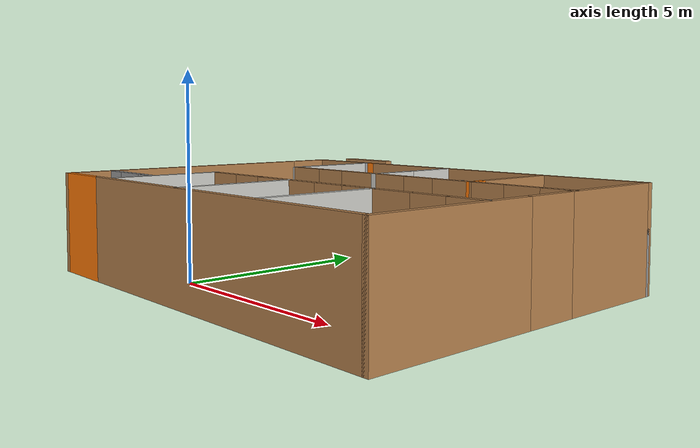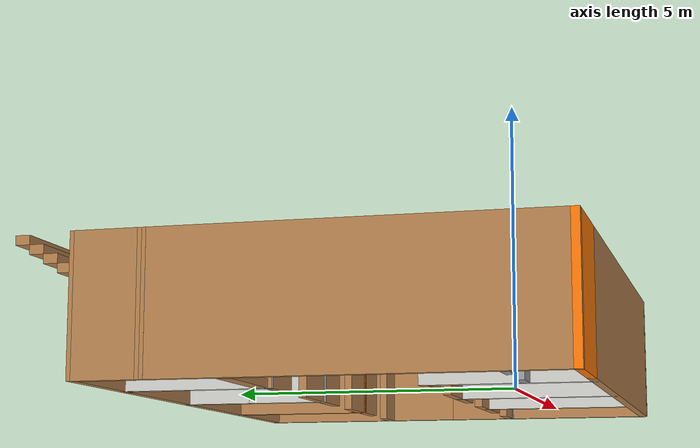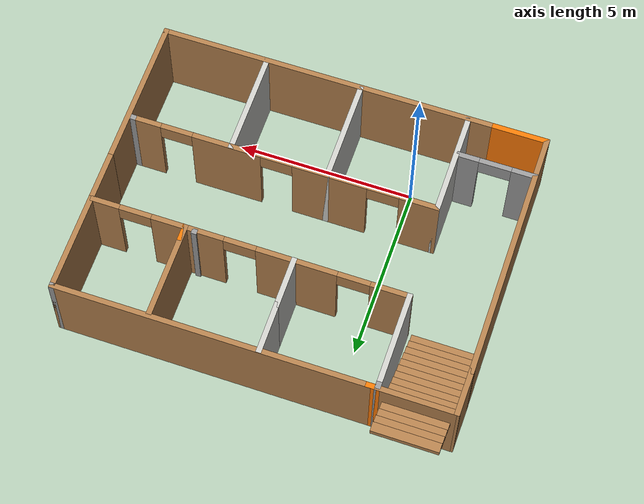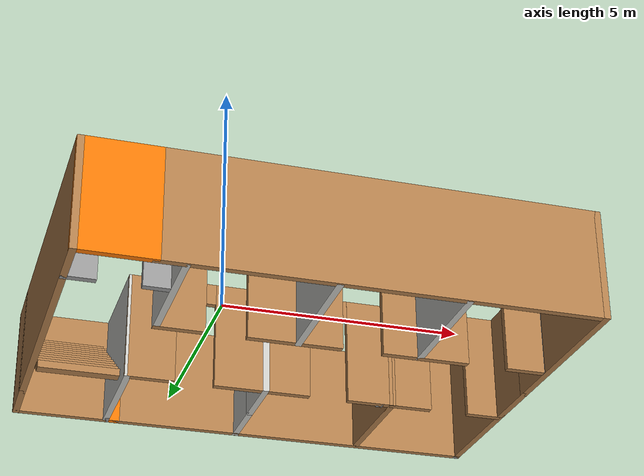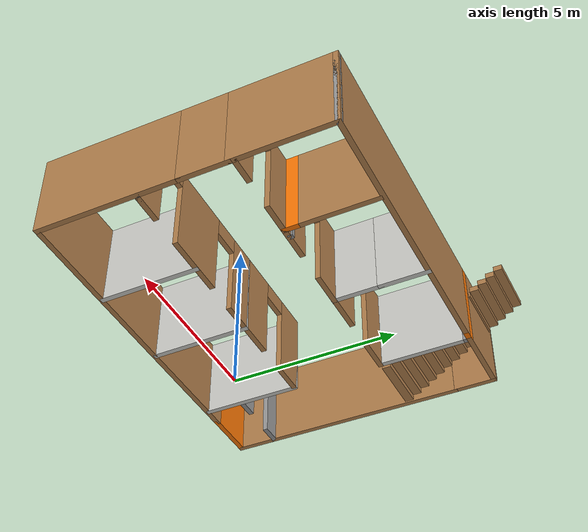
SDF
<?xml version='1.0'?>
<sdf version='1.7'>
  <model name='default'>
    <pose>2.22469 3.1925 0 0 -0 0</pose>
    <link name='Stairs_0'>
      <visual name='Stairs_0_Visual_0'>
        <pose>-4.43969 1.01683 0.083333 0 -0 -3.14159</pose>
        <geometry>
          <box>
            <size>1.81 0.258667 0.166667</size>
          </box>
        </geometry>
        <material>
          <script>
            <uri>file://media/materials/scripts/gazebo.material</uri>
            <name>Gazebo/Wood</name>
          </script>
          <ambient>1 1 1 1</ambient>
        </material>
        <meta>
          <layer>0</layer>
        </meta>
      </visual>
      <collision name='Stairs_0_Collision_0'>
        <geometry>
          <box>
            <size>1.81 0.258667 0.166667</size>
          </box>
        </geometry>
        <pose>-4.43969 1.01683 0.083333 0 -0 -3.14159</pose>
      </collision>
      <visual name='Stairs_0_Visual_1'>
        <pose>-4.43969 1.2755 0.25 0 -0 -3.14159</pose>
        <geometry>
          <box>
            <size>1.81 0.258667 0.166667</size>
          </box>
        </geometry>
        <material>
          <script>
            <uri>file://media/materials/scripts/gazebo.material</uri>
            <name>Gazebo/Wood</name>
          </script>
          <ambient>1 1 1 1</ambient>
        </material>
        <meta>
          <layer>0</layer>
        </meta>
      </visual>
      <collision name='Stairs_0_Collision_1'>
        <geometry>
          <box>
            <size>1.81 0.258667 0.166667</size>
          </box>
        </geometry>
        <pose>-4.43969 1.2755 0.25 0 -0 -3.14159</pose>
      </collision>
      <visual name='Stairs_0_Visual_2'>
        <pose>-4.43969 1.53417 0.416667 0 -0 -3.14159</pose>
        <geometry>
          <box>
            <size>1.81 0.258667 0.166667</size>
          </box>
        </geometry>
        <material>
          <script>
            <uri>file://media/materials/scripts/gazebo.material</uri>
            <name>Gazebo/Wood</name>
          </script>
          <ambient>1 1 1 1</ambient>
        </material>
        <meta>
          <layer>0</layer>
        </meta>
      </visual>
      <collision name='Stairs_0_Collision_2'>
        <geometry>
          <box>
            <size>1.81 0.258667 0.166667</size>
          </box>
        </geometry>
        <pose>-4.43969 1.53417 0.416667 0 -0 -3.14159</pose>
      </collision>
      <visual name='Stairs_0_Visual_3'>
        <pose>-4.43969 1.79283 0.583333 0 -0 -3.14159</pose>
        <geometry>
          <box>
            <size>1.81 0.258667 0.166667</size>
          </box>
        </geometry>
        <material>
          <script>
            <uri>file://media/materials/scripts/gazebo.material</uri>
            <name>Gazebo/Wood</name>
          </script>
          <ambient>1 1 1 1</ambient>
        </material>
        <meta>
          <layer>0</layer>
        </meta>
      </visual>
      <collision name='Stairs_0_Collision_3'>
        <geometry>
          <box>
            <size>1.81 0.258667 0.166667</size>
          </box>
        </geometry>
        <pose>-4.43969 1.79283 0.583333 0 -0 -3.14159</pose>
      </collision>
      <visual name='Stairs_0_Visual_4'>
        <pose>-4.43969 2.0515 0.75 0 -0 -3.14159</pose>
        <geometry>
          <box>
            <size>1.81 0.258667 0.166667</size>
          </box>
        </geometry>
        <material>
          <script>
            <uri>file://media/materials/scripts/gazebo.material</uri>
            <name>Gazebo/Wood</name>
          </script>
          <ambient>1 1 1 1</ambient>
        </material>
        <meta>
          <layer>0</layer>
        </meta>
      </visual>
      <collision name='Stairs_0_Collision_4'>
        <geometry>
          <box>
            <size>1.81 0.258667 0.166667</size>
          </box>
        </geometry>
        <pose>-4.43969 2.0515 0.75 0 -0 -3.14159</pose>
      </collision>
      <visual name='Stairs_0_Visual_5'>
        <pose>-4.43969 2.31017 0.916667 0 -0 -3.14159</pose>
        <geometry>
          <box>
            <size>1.81 0.258667 0.166667</size>
          </box>
        </geometry>
        <material>
          <script>
            <uri>file://media/materials/scripts/gazebo.material</uri>
            <name>Gazebo/Wood</name>
          </script>
          <ambient>1 1 1 1</ambient>
        </material>
        <meta>
          <layer>0</layer>
        </meta>
      </visual>
      <collision name='Stairs_0_Collision_5'>
        <geometry>
          <box>
            <size>1.81 0.258667 0.166667</size>
          </box>
        </geometry>
        <pose>-4.43969 2.31017 0.916667 0 -0 -3.14159</pose>
      </collision>
      <visual name='Stairs_0_Visual_6'>
        <pose>-4.43969 2.56883 1.08333 0 -0 -3.14159</pose>
        <geometry>
          <box>
            <size>1.81 0.258667 0.166667</size>
          </box>
        </geometry>
        <material>
          <script>
            <uri>file://media/materials/scripts/gazebo.material</uri>
            <name>Gazebo/Wood</name>
          </script>
          <ambient>1 1 1 1</ambient>
        </material>
        <meta>
          <layer>0</layer>
        </meta>
      </visual>
      <collision name='Stairs_0_Collision_6'>
        <geometry>
          <box>
            <size>1.81 0.258667 0.166667</size>
          </box>
        </geometry>
        <pose>-4.43969 2.56883 1.08333 0 -0 -3.14159</pose>
      </collision>
      <visual name='Stairs_0_Visual_7'>
        <pose>-4.43969 2.8275 1.25 0 -0 -3.14159</pose>
        <geometry>
          <box>
            <size>1.81 0.258667 0.166667</size>
          </box>
        </geometry>
        <material>
          <script>
            <uri>file://media/materials/scripts/gazebo.material</uri>
            <name>Gazebo/Wood</name>
          </script>
          <ambient>1 1 1 1</ambient>
        </material>
        <meta>
          <layer>0</layer>
        </meta>
      </visual>
      <collision name='Stairs_0_Collision_7'>
        <geometry>
          <box>
            <size>1.81 0.258667 0.166667</size>
          </box>
        </geometry>
        <pose>-4.43969 2.8275 1.25 0 -0 -3.14159</pose>
      </collision>
      <visual name='Stairs_0_Visual_8'>
        <pose>-4.43969 3.08617 1.41667 0 -0 -3.14159</pose>
        <geometry>
          <box>
            <size>1.81 0.258667 0.166667</size>
          </box>
        </geometry>
        <material>
          <script>
            <uri>file://media/materials/scripts/gazebo.material</uri>
            <name>Gazebo/Wood</name>
          </script>
          <ambient>1 1 1 1</ambient>
        </material>
        <meta>
          <layer>0</layer>
        </meta>
      </visual>
      <collision name='Stairs_0_Collision_8'>
        <geometry>
          <box>
            <size>1.81 0.258667 0.166667</size>
          </box>
        </geometry>
        <pose>-4.43969 3.08617 1.41667 0 -0 -3.14159</pose>
      </collision>
      <visual name='Stairs_0_Visual_9'>
        <pose>-4.43969 3.34483 1.58333 0 -0 -3.14159</pose>
        <geometry>
          <box>
            <size>1.81 0.258667 0.166667</size>
          </box>
        </geometry>
        <material>
          <script>
            <uri>file://media/materials/scripts/gazebo.material</uri>
            <name>Gazebo/Wood</name>
          </script>
          <ambient>1 1 1 1</ambient>
        </material>
        <meta>
          <layer>0</layer>
        </meta>
      </visual>
      <collision name='Stairs_0_Collision_9'>
        <geometry>
          <box>
            <size>1.81 0.258667 0.166667</size>
          </box>
        </geometry>
        <pose>-4.43969 3.34483 1.58333 0 -0 -3.14159</pose>
      </collision>
      <visual name='Stairs_0_Visual_10'>
        <pose>-4.43969 3.6035 1.75 0 -0 -3.14159</pose>
        <geometry>
          <box>
            <size>1.81 0.258667 0.166667</size>
          </box>
        </geometry>
        <material>
          <script>
            <uri>file://media/materials/scripts/gazebo.material</uri>
            <name>Gazebo/Wood</name>
          </script>
          <ambient>1 1 1 1</ambient>
        </material>
        <meta>
          <layer>0</layer>
        </meta>
      </visual>
      <collision name='Stairs_0_Collision_10'>
        <geometry>
          <box>
            <size>1.81 0.258667 0.166667</size>
          </box>
        </geometry>
        <pose>-4.43969 3.6035 1.75 0 -0 -3.14159</pose>
      </collision>
      <visual name='Stairs_0_Visual_11'>
        <pose>-4.43969 3.86217 1.91667 0 -0 -3.14159</pose>
        <geometry>
          <box>
            <size>1.81 0.258667 0.166667</size>
          </box>
        </geometry>
        <material>
          <script>
            <uri>file://media/materials/scripts/gazebo.material</uri>
            <name>Gazebo/Wood</name>
          </script>
          <ambient>1 1 1 1</ambient>
        </material>
        <meta>
          <layer>0</layer>
        </meta>
      </visual>
      <collision name='Stairs_0_Collision_11'>
        <geometry>
          <box>
            <size>1.81 0.258667 0.166667</size>
          </box>
        </geometry>
        <pose>-4.43969 3.86217 1.91667 0 -0 -3.14159</pose>
      </collision>
      <visual name='Stairs_0_Visual_12'>
        <pose>-4.43969 4.12083 2.08333 0 -0 -3.14159</pose>
        <geometry>
          <box>
            <size>1.81 0.258667 0.166667</size>
          </box>
        </geometry>
        <material>
          <script>
            <uri>file://media/materials/scripts/gazebo.material</uri>
            <name>Gazebo/Wood</name>
          </script>
          <ambient>1 1 1 1</ambient>
        </material>
        <meta>
          <layer>0</layer>
        </meta>
      </visual>
      <collision name='Stairs_0_Collision_12'>
        <geometry>
          <box>
            <size>1.81 0.258667 0.166667</size>
          </box>
        </geometry>
        <pose>-4.43969 4.12083 2.08333 0 -0 -3.14159</pose>
      </collision>
      <visual name='Stairs_0_Visual_13'>
        <pose>-4.43969 4.3795 2.25 0 -0 -3.14159</pose>
        <geometry>
          <box>
            <size>1.81 0.258667 0.166667</size>
          </box>
        </geometry>
        <material>
          <script>
            <uri>file://media/materials/scripts/gazebo.material</uri>
            <name>Gazebo/Wood</name>
          </script>
          <ambient>1 1 1 1</ambient>
        </material>
        <meta>
          <layer>0</layer>
        </meta>
      </visual>
      <collision name='Stairs_0_Collision_13'>
        <geometry>
          <box>
            <size>1.81 0.258667 0.166667</size>
          </box>
        </geometry>
        <pose>-4.43969 4.3795 2.25 0 -0 -3.14159</pose>
      </collision>
      <visual name='Stairs_0_Visual_14'>
        <pose>-4.43969 4.63817 2.41667 0 -0 -3.14159</pose>
        <geometry>
          <box>
            <size>1.81 0.258667 0.166667</size>
          </box>
        </geometry>
        <material>
          <script>
            <uri>file://media/materials/scripts/gazebo.material</uri>
            <name>Gazebo/Wood</name>
          </script>
          <ambient>1 1 1 1</ambient>
        </material>
        <meta>
          <layer>0</layer>
        </meta>
      </visual>
      <collision name='Stairs_0_Collision_14'>
        <geometry>
          <box>
            <size>1.81 0.258667 0.166667</size>
          </box>
        </geometry>
        <pose>-4.43969 4.63817 2.41667 0 -0 -3.14159</pose>
      </collision>
    </link>
    <link name='Wall_110'>
      <collision name='Wall_110_Collision'>
        <geometry>
          <box>
            <size>8.75 0.15 2.5</size>
          </box>
        </geometry>
        <pose>0 0 1.25 0 -0 0</pose>
      </collision>
      <visual name='Wall_110_Visual'>
        <pose>0 0 1.25 0 -0 0</pose>
        <geometry>
          <box>
            <size>8.75 0.15 2.5</size>
          </box>
        </geometry>
        <material>
          <script>
            <uri>file://media/materials/scripts/gazebo.material</uri>
            <name>Gazebo/Wood</name>
          </script>
          <ambient>0.996078 0.47451 0.0196078 1</ambient>
        </material>
        <meta>
          <layer>0</layer>
        </meta>
      </visual>
      <pose>1.17531 3.6075 0 0 -0 3.14159</pose>
    </link>
    <link name='Wall_120'>
      <collision name='Wall_120_Collision'>
        <geometry>
          <box>
            <size>0.15 0.15 2.5</size>
          </box>
        </geometry>
        <pose>0 0 1.25 0 -0 0</pose>
      </collision>
      <visual name='Wall_120_Visual'>
        <pose>0 0 1.25 0 -0 0</pose>
        <geometry>
          <box>
            <size>0.15 0.15 2.5</size>
          </box>
        </geometry>
        <material>
          <script>
            <uri>file://media/materials/scripts/gazebo.material</uri>
            <name>Gazebo/Grey</name>
          </script>
          <ambient>1 1 1 1</ambient>
        </material>
        <meta>
          <layer>0</layer>
        </meta>
      </visual>
      <pose>2.53531 0.9475 0 0 -0 0</pose>
    </link>
    <link name='Wall_124'>
      <collision name='Wall_124_Collision'>
        <geometry>
          <box>
            <size>2.75 0.15 2.5</size>
          </box>
        </geometry>
        <pose>0 0 1.25 0 -0 0</pose>
      </collision>
      <visual name='Wall_124_Visual'>
        <pose>0 0 1.25 0 -0 0</pose>
        <geometry>
          <box>
            <size>2.75 0.15 2.5</size>
          </box>
        </geometry>
        <material>
          <script>
            <uri>file://media/materials/scripts/gazebo.material</uri>
            <name>Gazebo/Wood</name>
          </script>
          <ambient>0.996078 0.47451 0.0196078 1</ambient>
        </material>
        <meta>
          <layer>0</layer>
        </meta>
      </visual>
      <pose>2.81531 2.1975 0 0 -0 -1.5708</pose>
    </link>
    <link name='Wall_125'>
      <pose>-0.274689 0.9025 0 0 -0 3.13998</pose>
      <visual name='Wall_125_Visual_0'>
        <pose>-2.58749 0 1.25 0 -0 0</pose>
        <geometry>
          <box>
            <size>1.15503 0.15 2.5</size>
          </box>
        </geometry>
        <material>
          <script>
            <uri>file://media/materials/scripts/gazebo.material</uri>
            <name>Gazebo/Wood</name>
          </script>
          <ambient>0.921569 0.807843 0.615686 1</ambient>
        </material>
        <meta>
          <layer>0</layer>
        </meta>
      </visual>
      <collision name='Wall_125_Collision_0'>
        <geometry>
          <box>
            <size>1.15503 0.15 2.5</size>
          </box>
        </geometry>
        <pose>-2.58749 0 1.25 0 -0 0</pose>
      </collision>
      <visual name='Wall_125_Visual_1'>
        <pose>0.010089 0 1.25 0 -0 0</pose>
        <geometry>
          <box>
            <size>2.24012 0.15 2.5</size>
          </box>
        </geometry>
        <material>
          <script>
            <uri>file://media/materials/scripts/gazebo.material</uri>
            <name>Gazebo/Wood</name>
          </script>
          <ambient>0.921569 0.807843 0.615686 1</ambient>
        </material>
        <meta>
          <layer>0</layer>
        </meta>
      </visual>
      <collision name='Wall_125_Collision_1'>
        <geometry>
          <box>
            <size>2.24012 0.15 2.5</size>
          </box>
        </geometry>
        <pose>0.010089 0 1.25 0 -0 0</pose>
      </collision>
      <visual name='Wall_125_Visual_2'>
        <pose>2.59758 0 1.25 0 -0 0</pose>
        <geometry>
          <box>
            <size>1.13485 0.15 2.5</size>
          </box>
        </geometry>
        <material>
          <script>
            <uri>file://media/materials/scripts/gazebo.material</uri>
            <name>Gazebo/Wood</name>
          </script>
          <ambient>0.921569 0.807843 0.615686 1</ambient>
        </material>
        <meta>
          <layer>0</layer>
        </meta>
      </visual>
      <collision name='Wall_125_Collision_2'>
        <geometry>
          <box>
            <size>1.13485 0.15 2.5</size>
          </box>
        </geometry>
        <pose>2.59758 0 1.25 0 -0 0</pose>
      </collision>
      <visual name='Wall_125_Visual_3'>
        <pose>-1.55997 0 2.25 0 -0 0</pose>
        <geometry>
          <box>
            <size>0.9 0.15 0.5</size>
          </box>
        </geometry>
        <material>
          <script>
            <uri>file://media/materials/scripts/gazebo.material</uri>
            <name>Gazebo/Wood</name>
          </script>
          <ambient>0.921569 0.807843 0.615686 1</ambient>
        </material>
        <meta>
          <layer>0</layer>
        </meta>
      </visual>
      <collision name='Wall_125_Collision_3'>
        <geometry>
          <box>
            <size>0.9 0.15 0.5</size>
          </box>
        </geometry>
        <pose>-1.55997 0 2.25 0 -0 0</pose>
      </collision>
      <visual name='Wall_125_Visual_4'>
        <pose>1.58015 0 2.25 0 -0 0</pose>
        <geometry>
          <box>
            <size>0.9 0.15 0.5</size>
          </box>
        </geometry>
        <material>
          <script>
            <uri>file://media/materials/scripts/gazebo.material</uri>
            <name>Gazebo/Wood</name>
          </script>
          <ambient>0.921569 0.807843 0.615686 1</ambient>
        </material>
        <meta>
          <layer>0</layer>
        </meta>
      </visual>
      <collision name='Wall_125_Collision_4'>
        <geometry>
          <box>
            <size>0.9 0.15 0.5</size>
          </box>
        </geometry>
        <pose>1.58015 0 2.25 0 -0 0</pose>
      </collision>
    </link>
    <link name='Wall_129'>
      <collision name='Wall_129_Collision'>
        <geometry>
          <box>
            <size>2.75 0.15 2.5</size>
          </box>
        </geometry>
        <pose>0 0 1.25 0 -0 0</pose>
      </collision>
      <visual name='Wall_129_Visual'>
        <pose>0 0 1.25 0 -0 0</pose>
        <geometry>
          <box>
            <size>2.75 0.15 2.5</size>
          </box>
        </geometry>
        <material>
          <script>
            <uri>file://media/materials/scripts/gazebo.material</uri>
            <name>Gazebo/CeilingTiled</name>
          </script>
          <ambient>0.996078 0.47451 0.0196078 1</ambient>
        </material>
        <meta>
          <layer>0</layer>
        </meta>
      </visual>
      <pose>-3.36469 2.2075 0 0 -0 1.5708</pose>
    </link>
    <link name='Wall_130'>
      <collision name='Wall_130_Collision'>
        <geometry>
          <box>
            <size>0.25 0.15 2.5</size>
          </box>
        </geometry>
        <pose>0 0 1.25 0 -0 0</pose>
      </collision>
      <visual name='Wall_130_Visual'>
        <pose>0 0 1.25 0 -0 0</pose>
        <geometry>
          <box>
            <size>0.25 0.15 2.5</size>
          </box>
        </geometry>
        <material>
          <script>
            <uri>file://media/materials/scripts/gazebo.material</uri>
            <name>Gazebo/Grey</name>
          </script>
          <ambient>1 1 1 1</ambient>
        </material>
        <meta>
          <layer>0</layer>
        </meta>
      </visual>
      <pose>-3.36469 3.5575 0 0 -0 1.5708</pose>
    </link>
    <link name='Wall_131'>
      <collision name='Wall_131_Collision'>
        <geometry>
          <box>
            <size>0.39 0.15 2.5</size>
          </box>
        </geometry>
        <pose>0 0 1.25 0 -0 0</pose>
      </collision>
      <visual name='Wall_131_Visual'>
        <pose>0 0 1.25 0 -0 0</pose>
        <geometry>
          <box>
            <size>0.39 0.15 2.5</size>
          </box>
        </geometry>
        <material>
          <script>
            <uri>file://media/materials/scripts/gazebo.material</uri>
            <name>Gazebo/Grey</name>
          </script>
          <ambient>0.996078 0.47451 0.0196078 1</ambient>
        </material>
        <meta>
          <layer>0</layer>
        </meta>
      </visual>
      <pose>-3.24469 3.6075 0 0 -0 0</pose>
    </link>
    <link name='Wall_133'>
      <pose>4.11531 0.8975 0 0 -0 0</pose>
      <visual name='Wall_133_Visual_0'>
        <pose>-0.8625 0 1.25 0 -0 0</pose>
        <geometry>
          <box>
            <size>1.025 0.15 2.5</size>
          </box>
        </geometry>
        <material>
          <script>
            <uri>file://media/materials/scripts/gazebo.material</uri>
            <name>Gazebo/Wood</name>
          </script>
          <ambient>0.921569 0.807843 0.615686 1</ambient>
        </material>
        <meta>
          <layer>0</layer>
        </meta>
      </visual>
      <collision name='Wall_133_Collision_0'>
        <geometry>
          <box>
            <size>1.025 0.15 2.5</size>
          </box>
        </geometry>
        <pose>-0.8625 0 1.25 0 -0 0</pose>
      </collision>
      <visual name='Wall_133_Visual_1'>
        <pose>0.9625 0 1.25 0 -0 0</pose>
        <geometry>
          <box>
            <size>0.825 0.15 2.5</size>
          </box>
        </geometry>
        <material>
          <script>
            <uri>file://media/materials/scripts/gazebo.material</uri>
            <name>Gazebo/Wood</name>
          </script>
          <ambient>0.921569 0.807843 0.615686 1</ambient>
        </material>
        <meta>
          <layer>0</layer>
        </meta>
      </visual>
      <collision name='Wall_133_Collision_1'>
        <geometry>
          <box>
            <size>0.825 0.15 2.5</size>
          </box>
        </geometry>
        <pose>0.9625 0 1.25 0 -0 0</pose>
      </collision>
      <visual name='Wall_133_Visual_2'>
        <pose>0.1 0 2.25 0 -0 0</pose>
        <geometry>
          <box>
            <size>0.9 0.15 0.5</size>
          </box>
        </geometry>
        <material>
          <script>
            <uri>file://media/materials/scripts/gazebo.material</uri>
            <name>Gazebo/Wood</name>
          </script>
          <ambient>0.921569 0.807843 0.615686 1</ambient>
        </material>
        <meta>
          <layer>0</layer>
        </meta>
      </visual>
      <collision name='Wall_133_Collision_2'>
        <geometry>
          <box>
            <size>0.9 0.15 0.5</size>
          </box>
        </geometry>
        <pose>0.1 0 2.25 0 -0 0</pose>
      </collision>
    </link>
    <link name='Wall_135'>
      <collision name='Wall_135_Collision'>
        <geometry>
          <box>
            <size>1.5 0.15 2.5</size>
          </box>
        </geometry>
        <pose>0 0 1.25 0 -0 0</pose>
      </collision>
      <visual name='Wall_135_Visual'>
        <pose>0 0 1.25 0 -0 0</pose>
        <geometry>
          <box>
            <size>1.5 0.15 2.5</size>
          </box>
        </geometry>
        <material>
          <script>
            <uri>file://media/materials/scripts/gazebo.material</uri>
            <name>Gazebo/CeilingTiled</name>
          </script>
          <ambient>0.996078 0.47451 0.0196078 1</ambient>
        </material>
        <meta>
          <layer>0</layer>
        </meta>
      </visual>
      <pose>-0.204689 1.5725 0 0 -0 1.5708</pose>
    </link>
    <link name='Wall_137'>
      <collision name='Wall_137_Collision'>
        <geometry>
          <box>
            <size>1.5 0.15 2.5</size>
          </box>
        </geometry>
        <pose>0 0 1.25 0 -0 0</pose>
      </collision>
      <visual name='Wall_137_Visual'>
        <pose>0 0 1.25 0 -0 0</pose>
        <geometry>
          <box>
            <size>1.5 0.15 2.5</size>
          </box>
        </geometry>
        <material>
          <script>
            <uri>file://media/materials/scripts/gazebo.material</uri>
            <name>Gazebo/CeilingTiled</name>
          </script>
          <ambient>0.996078 0.47451 0.0196078 1</ambient>
        </material>
        <meta>
          <layer>0</layer>
        </meta>
      </visual>
      <pose>-0.204689 2.9225 0 0 -0 1.5708</pose>
    </link>
    <link name='Wall_139'>
      <collision name='Wall_139_Collision'>
        <geometry>
          <box>
            <size>0.5 0.15 2.5</size>
          </box>
        </geometry>
        <pose>0 0 1.25 0 -0 0</pose>
      </collision>
      <visual name='Wall_139_Visual'>
        <pose>0 0 1.25 0 -0 0</pose>
        <geometry>
          <box>
            <size>0.5 0.15 2.5</size>
          </box>
        </geometry>
        <material>
          <script>
            <uri>file://media/materials/scripts/gazebo.material</uri>
            <name>Gazebo/Grey</name>
          </script>
          <ambient>0.996078 0.47451 0.0196078 1</ambient>
        </material>
        <meta>
          <layer>0</layer>
        </meta>
      </visual>
      <pose>2.81531 1.0725 0 0 -0 1.5708</pose>
    </link>
    <link name='Wall_142'>
      <collision name='Wall_142_Collision'>
        <geometry>
          <box>
            <size>1.75 0.15 2.5</size>
          </box>
        </geometry>
        <pose>0 0 1.25 0 -0 0</pose>
      </collision>
      <visual name='Wall_142_Visual'>
        <pose>0 0 1.25 0 -0 0</pose>
        <geometry>
          <box>
            <size>1.75 0.15 2.5</size>
          </box>
        </geometry>
        <material>
          <script>
            <uri>file://media/materials/scripts/gazebo.material</uri>
            <name>Gazebo/Grey</name>
          </script>
          <ambient>0.996078 0.47451 0.0196078 1</ambient>
        </material>
        <meta>
          <layer>0</layer>
        </meta>
      </visual>
      <pose>-4.67469 -4.6925 0 0 -0 3.14159</pose>
    </link>
    <link name='Wall_143'>
      <collision name='Wall_143_Collision'>
        <geometry>
          <box>
            <size>7.25 0.15 2.5</size>
          </box>
        </geometry>
        <pose>0 0 1.25 0 -0 0</pose>
      </collision>
      <visual name='Wall_143_Visual'>
        <pose>0 0 1.25 0 -0 0</pose>
        <geometry>
          <box>
            <size>7.25 0.15 2.5</size>
          </box>
        </geometry>
        <material>
          <script>
            <uri>file://media/materials/scripts/gazebo.material</uri>
            <name>Gazebo/Wood</name>
          </script>
          <ambient>0.996078 0.47451 0.0196078 1</ambient>
        </material>
        <meta>
          <layer>0</layer>
        </meta>
      </visual>
      <pose>-5.47469 -1.1425 0 0 -0 1.5708</pose>
    </link>
    <link name='Wall_145'>
      <collision name='Wall_145_Collision'>
        <geometry>
          <box>
            <size>2.25 0.15 2.5</size>
          </box>
        </geometry>
        <pose>0 0 1.25 0 -0 0</pose>
      </collision>
      <visual name='Wall_145_Visual'>
        <pose>0 0 1.25 0 -0 0</pose>
        <geometry>
          <box>
            <size>2.25 0.15 2.5</size>
          </box>
        </geometry>
        <material>
          <script>
            <uri>file://media/materials/scripts/gazebo.material</uri>
            <name>Gazebo/Wood</name>
          </script>
          <ambient>1 1 1 1</ambient>
        </material>
        <meta>
          <layer>0</layer>
        </meta>
      </visual>
      <pose>-4.41469 3.6075 0 0 -0 3.14159</pose>
    </link>
    <link name='Wall_146'>
      <collision name='Wall_146_Collision'>
        <geometry>
          <box>
            <size>1.35004 0.15 2.5</size>
          </box>
        </geometry>
        <pose>0 0 1.25 0 -0 0</pose>
      </collision>
      <visual name='Wall_146_Visual'>
        <pose>0 0 1.25 0 -0 0</pose>
        <geometry>
          <box>
            <size>1.35004 0.15 2.5</size>
          </box>
        </geometry>
        <material>
          <script>
            <uri>file://media/materials/scripts/gazebo.material</uri>
            <name>Gazebo/Wood</name>
          </script>
          <ambient>0.996078 0.47451 0.0196078 1</ambient>
        </material>
        <meta>
          <layer>0</layer>
        </meta>
      </visual>
      <pose>-5.46969 3.0075 0 0 -0 -1.57913</pose>
    </link>
    <link name='Wall_148'>
      <pose>-4.41469 -3.5425 0 0 -0 0</pose>
      <visual name='Wall_148_Visual_0'>
        <pose>-0.7675 0 1.25 0 -0 0</pose>
        <geometry>
          <box>
            <size>0.715 0.15 2.5</size>
          </box>
        </geometry>
        <material>
          <script>
            <uri>file://media/materials/scripts/gazebo.material</uri>
            <name>Gazebo/Grey</name>
          </script>
          <ambient>1 1 1 1</ambient>
        </material>
        <meta>
          <layer>0</layer>
        </meta>
      </visual>
      <collision name='Wall_148_Collision_0'>
        <geometry>
          <box>
            <size>0.715 0.15 2.5</size>
          </box>
        </geometry>
        <pose>-0.7675 0 1.25 0 -0 0</pose>
      </collision>
      <visual name='Wall_148_Visual_1'>
        <pose>0.8075 0 1.25 0 -0 0</pose>
        <geometry>
          <box>
            <size>0.635 0.15 2.5</size>
          </box>
        </geometry>
        <material>
          <script>
            <uri>file://media/materials/scripts/gazebo.material</uri>
            <name>Gazebo/Grey</name>
          </script>
          <ambient>1 1 1 1</ambient>
        </material>
        <meta>
          <layer>0</layer>
        </meta>
      </visual>
      <collision name='Wall_148_Collision_1'>
        <geometry>
          <box>
            <size>0.635 0.15 2.5</size>
          </box>
        </geometry>
        <pose>0.8075 0 1.25 0 -0 0</pose>
      </collision>
      <visual name='Wall_148_Visual_2'>
        <pose>0.04 0 2.25 0 -0 0</pose>
        <geometry>
          <box>
            <size>0.9 0.15 0.5</size>
          </box>
        </geometry>
        <material>
          <script>
            <uri>file://media/materials/scripts/gazebo.material</uri>
            <name>Gazebo/Grey</name>
          </script>
          <ambient>1 1 1 1</ambient>
        </material>
        <meta>
          <layer>0</layer>
        </meta>
      </visual>
      <collision name='Wall_148_Collision_2'>
        <geometry>
          <box>
            <size>0.9 0.15 0.5</size>
          </box>
        </geometry>
        <pose>0.04 0 2.25 0 -0 0</pose>
      </collision>
    </link>
    <link name='Wall_72'>
      <collision name='Wall_72_Collision'>
        <geometry>
          <box>
            <size>9.5 0.15 2.5</size>
          </box>
        </geometry>
        <pose>0 0 1.25 0 -0 0</pose>
      </collision>
      <visual name='Wall_72_Visual'>
        <pose>0 0 1.25 0 -0 0</pose>
        <geometry>
          <box>
            <size>9.5 0.15 2.5</size>
          </box>
        </geometry>
        <material>
          <script>
            <uri>file://media/materials/scripts/gazebo.material</uri>
            <name>Gazebo/Wood</name>
          </script>
          <ambient>0.996078 0.47451 0.0196078 1</ambient>
        </material>
        <meta>
          <layer>0</layer>
        </meta>
      </visual>
      <pose>0.800311 -4.6925 0 0 -0 0</pose>
    </link>
    <link name='Wall_73'>
      <collision name='Wall_73_Collision'>
        <geometry>
          <box>
            <size>4.25 0.15 2.5</size>
          </box>
        </geometry>
        <pose>0 0 1.25 0 -0 0</pose>
      </collision>
      <visual name='Wall_73_Visual'>
        <pose>0 0 1.25 0 -0 0</pose>
        <geometry>
          <box>
            <size>4.25 0.15 2.5</size>
          </box>
        </geometry>
        <material>
          <script>
            <uri>file://media/materials/scripts/gazebo.material</uri>
            <name>Gazebo/Wood</name>
          </script>
          <ambient>0.996078 0.47451 0.0196078 1</ambient>
        </material>
        <meta>
          <layer>0</layer>
        </meta>
      </visual>
      <pose>5.47531 -2.6425 0 0 -0 1.5708</pose>
    </link>
    <link name='Wall_80'>
      <collision name='Wall_80_Collision'>
        <geometry>
          <box>
            <size>3 0.15 2.5</size>
          </box>
        </geometry>
        <pose>0 0 1.25 0 -0 0</pose>
      </collision>
      <visual name='Wall_80_Visual'>
        <pose>0 0 1.25 0 -0 0</pose>
        <geometry>
          <box>
            <size>3 0.15 2.5</size>
          </box>
        </geometry>
        <material>
          <script>
            <uri>file://media/materials/scripts/gazebo.material</uri>
            <name>Gazebo/CeilingTiled</name>
          </script>
          <ambient>1 1 1 1</ambient>
        </material>
        <meta>
          <layer>0</layer>
        </meta>
      </visual>
      <pose>2.50531 -3.2275 0 0 -0 1.5708</pose>
    </link>
    <link name='Wall_85'>
      <collision name='Wall_85_Collision'>
        <geometry>
          <box>
            <size>3 0.15 2.5</size>
          </box>
        </geometry>
        <pose>0 0 1.25 0 -0 0</pose>
      </collision>
      <visual name='Wall_85_Visual'>
        <pose>0 0 1.25 0 -0 0</pose>
        <geometry>
          <box>
            <size>3 0.15 2.5</size>
          </box>
        </geometry>
        <material>
          <script>
            <uri>file://media/materials/scripts/gazebo.material</uri>
            <name>Gazebo/CeilingTiled</name>
          </script>
          <ambient>1 1 1 1</ambient>
        </material>
        <meta>
          <layer>0</layer>
        </meta>
      </visual>
      <pose>-0.214689 -3.2175 0 0 -0 1.5708</pose>
    </link>
    <link name='Wall_90'>
      <collision name='Wall_90_Collision'>
        <geometry>
          <box>
            <size>3 0.15 2.5</size>
          </box>
        </geometry>
        <pose>0 0 1.25 0 -0 0</pose>
      </collision>
      <visual name='Wall_90_Visual'>
        <pose>0 0 1.25 0 -0 0</pose>
        <geometry>
          <box>
            <size>3 0.15 2.5</size>
          </box>
        </geometry>
        <material>
          <script>
            <uri>file://media/materials/scripts/gazebo.material</uri>
            <name>Gazebo/CeilingTiled</name>
          </script>
          <ambient>1 1 1 1</ambient>
        </material>
        <meta>
          <layer>0</layer>
        </meta>
      </visual>
      <pose>-3.28469 -3.2175 0 0 -0 1.5708</pose>
    </link>
    <link name='Wall_92'>
      <pose>1.01531 -1.7925 0 0 -0 0</pose>
      <visual name='Wall_92_Visual_0'>
        <pose>-3.8175 0 1.25 0 -0 0</pose>
        <geometry>
          <box>
            <size>1.115 0.15 2.5</size>
          </box>
        </geometry>
        <material>
          <script>
            <uri>file://media/materials/scripts/gazebo.material</uri>
            <name>Gazebo/Wood</name>
          </script>
          <ambient>1 1 1 1</ambient>
        </material>
        <meta>
          <layer>0</layer>
        </meta>
      </visual>
      <collision name='Wall_92_Collision_0'>
        <geometry>
          <box>
            <size>1.115 0.15 2.5</size>
          </box>
        </geometry>
        <pose>-3.8175 0 1.25 0 -0 0</pose>
      </collision>
      <visual name='Wall_92_Visual_1'>
        <pose>-1.31 0 1.25 0 -0 0</pose>
        <geometry>
          <box>
            <size>2.1 0.15 2.5</size>
          </box>
        </geometry>
        <material>
          <script>
            <uri>file://media/materials/scripts/gazebo.material</uri>
            <name>Gazebo/Wood</name>
          </script>
          <ambient>1 1 1 1</ambient>
        </material>
        <meta>
          <layer>0</layer>
        </meta>
      </visual>
      <collision name='Wall_92_Collision_1'>
        <geometry>
          <box>
            <size>2.1 0.15 2.5</size>
          </box>
        </geometry>
        <pose>-1.31 0 1.25 0 -0 0</pose>
      </collision>
      <visual name='Wall_92_Visual_2'>
        <pose>1.62 0 1.25 0 -0 0</pose>
        <geometry>
          <box>
            <size>1.96 0.15 2.5</size>
          </box>
        </geometry>
        <material>
          <script>
            <uri>file://media/materials/scripts/gazebo.material</uri>
            <name>Gazebo/Wood</name>
          </script>
          <ambient>1 1 1 1</ambient>
        </material>
        <meta>
          <layer>0</layer>
        </meta>
      </visual>
      <collision name='Wall_92_Collision_2'>
        <geometry>
          <box>
            <size>1.96 0.15 2.5</size>
          </box>
        </geometry>
        <pose>1.62 0 1.25 0 -0 0</pose>
      </collision>
      <visual name='Wall_92_Visual_3'>
        <pose>3.9375 0 1.25 0 -0 0</pose>
        <geometry>
          <box>
            <size>0.875 0.15 2.5</size>
          </box>
        </geometry>
        <material>
          <script>
            <uri>file://media/materials/scripts/gazebo.material</uri>
            <name>Gazebo/Wood</name>
          </script>
          <ambient>1 1 1 1</ambient>
        </material>
        <meta>
          <layer>0</layer>
        </meta>
      </visual>
      <collision name='Wall_92_Collision_3'>
        <geometry>
          <box>
            <size>0.875 0.15 2.5</size>
          </box>
        </geometry>
        <pose>3.9375 0 1.25 0 -0 0</pose>
      </collision>
      <visual name='Wall_92_Visual_4'>
        <pose>-2.81 0 2.25 0 -0 0</pose>
        <geometry>
          <box>
            <size>0.9 0.15 0.5</size>
          </box>
        </geometry>
        <material>
          <script>
            <uri>file://media/materials/scripts/gazebo.material</uri>
            <name>Gazebo/Wood</name>
          </script>
          <ambient>1 1 1 1</ambient>
        </material>
        <meta>
          <layer>0</layer>
        </meta>
      </visual>
      <collision name='Wall_92_Collision_4'>
        <geometry>
          <box>
            <size>0.9 0.15 0.5</size>
          </box>
        </geometry>
        <pose>-2.81 0 2.25 0 -0 0</pose>
      </collision>
      <visual name='Wall_92_Visual_5'>
        <pose>0.19 0 2.25 0 -0 0</pose>
        <geometry>
          <box>
            <size>0.9 0.15 0.5</size>
          </box>
        </geometry>
        <material>
          <script>
            <uri>file://media/materials/scripts/gazebo.material</uri>
            <name>Gazebo/Wood</name>
          </script>
          <ambient>1 1 1 1</ambient>
        </material>
        <meta>
          <layer>0</layer>
        </meta>
      </visual>
      <collision name='Wall_92_Collision_5'>
        <geometry>
          <box>
            <size>0.9 0.15 0.5</size>
          </box>
        </geometry>
        <pose>0.19 0 2.25 0 -0 0</pose>
      </collision>
      <visual name='Wall_92_Visual_6'>
        <pose>3.05 0 2.25 0 -0 0</pose>
        <geometry>
          <box>
            <size>0.9 0.15 0.5</size>
          </box>
        </geometry>
        <material>
          <script>
            <uri>file://media/materials/scripts/gazebo.material</uri>
            <name>Gazebo/Wood</name>
          </script>
          <ambient>1 1 1 1</ambient>
        </material>
        <meta>
          <layer>0</layer>
        </meta>
      </visual>
      <collision name='Wall_92_Collision_6'>
        <geometry>
          <box>
            <size>0.9 0.15 0.5</size>
          </box>
        </geometry>
        <pose>3.05 0 2.25 0 -0 0</pose>
      </collision>
    </link>
    <link name='Wall_93'>
      <collision name='Wall_93_Collision'>
        <geometry>
          <box>
            <size>0.25 0.15 2.5</size>
          </box>
        </geometry>
        <pose>0 0 1.25 0 -0 0</pose>
      </collision>
      <visual name='Wall_93_Visual'>
        <pose>0 0 1.25 0 -0 0</pose>
        <geometry>
          <box>
            <size>0.25 0.15 2.5</size>
          </box>
        </geometry>
        <material>
          <script>
            <uri>file://media/materials/scripts/gazebo.material</uri>
            <name>Gazebo/Grey</name>
          </script>
          <ambient>1 1 1 1</ambient>
        </material>
        <meta>
          <layer>0</layer>
        </meta>
      </visual>
      <pose>5.36531 -1.7925 0 0 -0 0</pose>
    </link>
    <link name='Wall_96'>
      <collision name='Wall_96_Collision'>
        <geometry>
          <box>
            <size>1.5 0.15 2.5</size>
          </box>
        </geometry>
        <pose>0 0 1.25 0 -0 0</pose>
      </collision>
      <visual name='Wall_96_Visual'>
        <pose>0 0 1.25 0 -0 0</pose>
        <geometry>
          <box>
            <size>1.5 0.15 2.5</size>
          </box>
        </geometry>
        <material>
          <script>
            <uri>file://media/materials/scripts/gazebo.material</uri>
            <name>Gazebo/Wood</name>
          </script>
          <ambient>0.996078 0.47451 0.0196078 1</ambient>
        </material>
        <meta>
          <layer>0</layer>
        </meta>
      </visual>
      <pose>5.47531 0.0825 0 0 -0 1.5708</pose>
    </link>
    <link name='Wall_98'>
      <collision name='Wall_98_Collision'>
        <geometry>
          <box>
            <size>3 0.15 2.5</size>
          </box>
        </geometry>
        <pose>0 0 1.25 0 -0 0</pose>
      </collision>
      <visual name='Wall_98_Visual'>
        <pose>0 0 1.25 0 -0 0</pose>
        <geometry>
          <box>
            <size>3 0.15 2.5</size>
          </box>
        </geometry>
        <material>
          <script>
            <uri>file://media/materials/scripts/gazebo.material</uri>
            <name>Gazebo/Wood</name>
          </script>
          <ambient>0.996078 0.47451 0.0196078 1</ambient>
        </material>
        <meta>
          <layer>0</layer>
        </meta>
      </visual>
      <pose>5.47531 2.1825 0 0 -0 1.5708</pose>
    </link>
    <link name='Wall_99'>
      <collision name='Wall_99_Collision'>
        <geometry>
          <box>
            <size>0.15 0.15 2.5</size>
          </box>
        </geometry>
        <pose>0 0 1.25 0 -0 0</pose>
      </collision>
      <visual name='Wall_99_Visual'>
        <pose>0 0 1.25 0 -0 0</pose>
        <geometry>
          <box>
            <size>0.15 0.15 2.5</size>
          </box>
        </geometry>
        <material>
          <script>
            <uri>file://media/materials/scripts/gazebo.material</uri>
            <name>Gazebo/Grey</name>
          </script>
          <ambient>1 1 1 1</ambient>
        </material>
        <meta>
          <layer>0</layer>
        </meta>
      </visual>
      <pose>5.47531 3.6075 0 0 -0 0</pose>
    </link>
    <static>1</static>
  </model>
</sdf>
